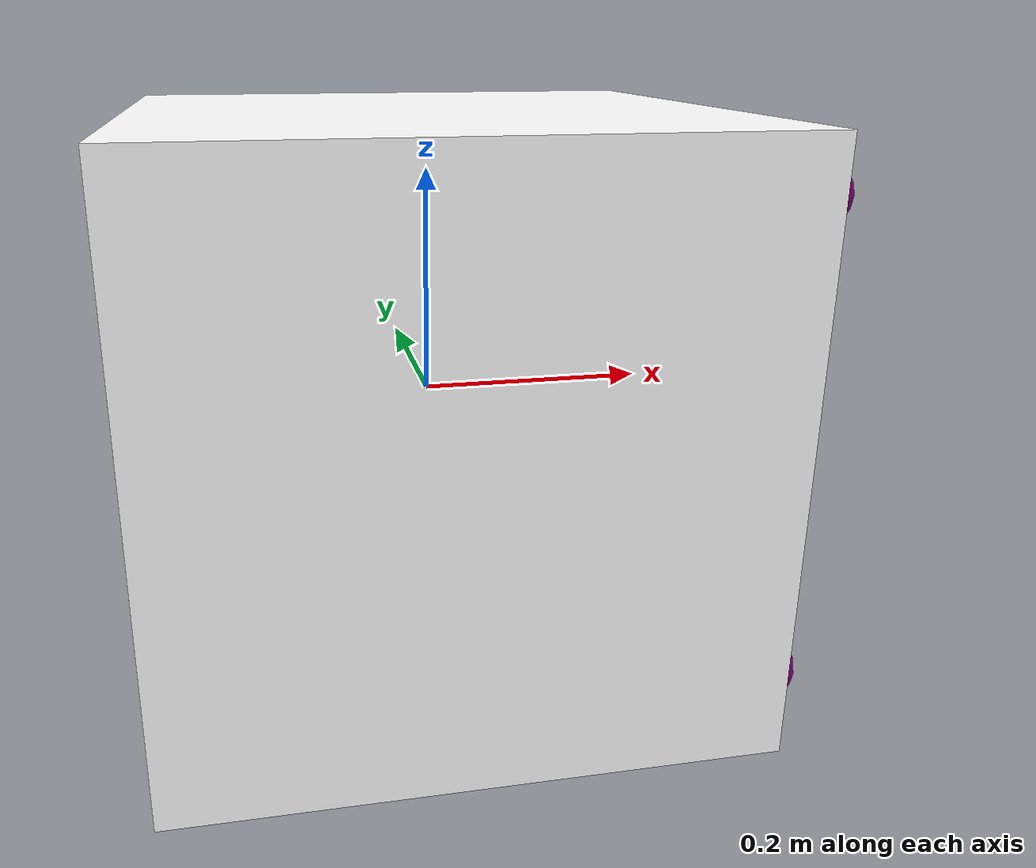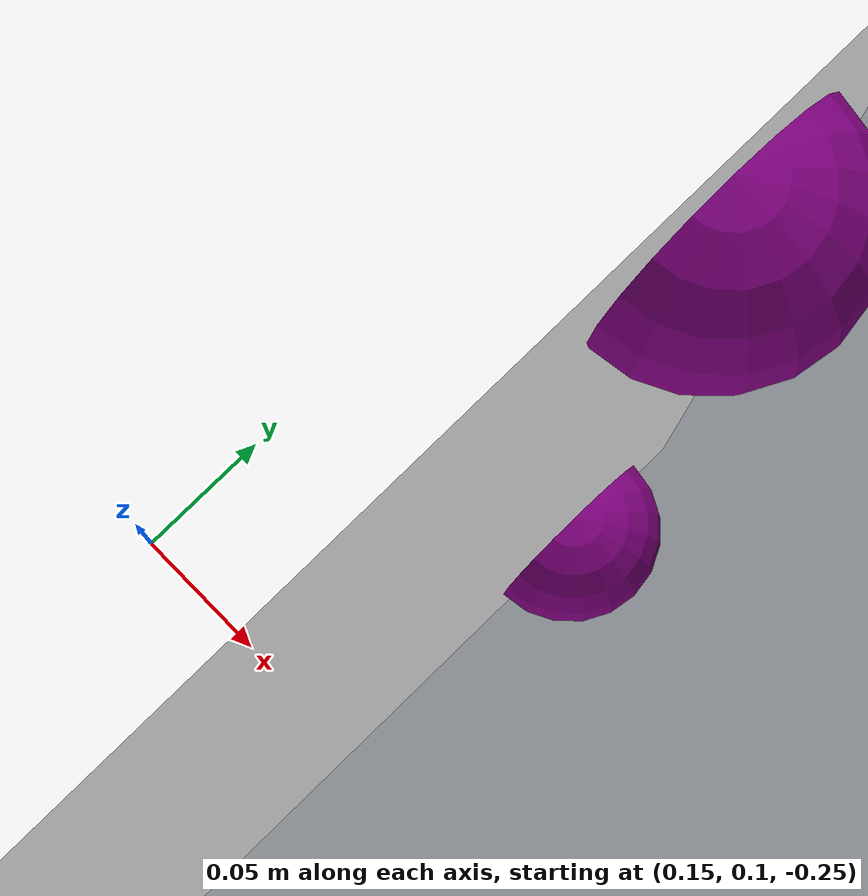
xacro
<?xml version="1.0"?>
<robot xmlns:xacro="http://www.ros.org/wiki/xacro" name="target">

  <!-- Materials -->
  <material name="white">
    <color rgba="1 1 1 1"/>
  </material>
  <material name="purple">
    <color rgba="0.5 0 0.5 1"/>
  </material>

  <!-- Properties -->
  <xacro:property name="box_size" value="0.5"/>
  <xacro:property name="marker_radius" value="0.03"/>
  <xacro:property name="marker_offset_x" value="0.25"/> <!-- Half of box size -->
  <xacro:property name="marker_offset_y" value="0.2"/>
  <xacro:property name="marker_offset_z" value="0.2"/>

  <!-- Base Link -->
  <link name="base_link">
    <inertial>
      <mass value="1.0"/>
      <origin xyz="0 0 0" rpy="0 0 0"/>
      <inertia ixx="${1.0/12.0 * 1.0 * (box_size*box_size + box_size*box_size)}"
               ixy="0" ixz="0"
               iyy="${1.0/12.0 * 1.0 * (box_size*box_size + box_size*box_size)}"
               iyz="0"
               izz="${1.0/12.0 * 1.0 * (box_size*box_size + box_size*box_size)}"/>
    </inertial>
    <visual>
      <geometry>
        <box size="${box_size} ${box_size} ${box_size}"/>
      </geometry>
      <material name="white"/>
    </visual>
    <collision>
      <geometry>
        <box size="${box_size} ${box_size} ${box_size}"/>
      </geometry>
    </collision>
  </link>

  <gazebo reference="base_link">
    <material>Gazebo/White</material>
    <mu1>0.0</mu1>
    <mu2>0.0</mu2>
  </gazebo>

  <!-- Marker Macro -->
  <xacro:macro name="marker" params="suffix y_mult z_mult">
    <link name="marker_${suffix}">
      <visual>
        <geometry>
          <sphere radius="${marker_radius}"/>
        </geometry>
        <material name="purple"/>
      </visual>
    </link>
    <joint name="joint_marker_${suffix}" type="fixed">
      <parent link="base_link"/>
      <child link="marker_${suffix}"/>
      <origin xyz="${marker_offset_x} ${marker_offset_y * y_mult} ${marker_offset_z * z_mult}" rpy="0 0 0"/>
    </joint>
    <gazebo reference="marker_${suffix}">
      <material>Gazebo/Purple</material>
    </gazebo>
  </xacro:macro>

  <!-- Instantiate Markers -->
  <xacro:marker suffix="tl" y_mult="1" z_mult="1"/>
  <xacro:marker suffix="tr" y_mult="-1" z_mult="1"/>
  <xacro:marker suffix="bl" y_mult="1" z_mult="-1"/>
  <xacro:marker suffix="br" y_mult="-1" z_mult="-1"/>

  <!-- Planar Move Plugin -->
  <gazebo>
    <plugin name="object_controller" filename="libgazebo_ros_planar_move.so">
      <commandTopic>cmd_vel</commandTopic>
      <odometryTopic>odom</odometryTopic>
      <odometryFrame>odom</odometryFrame>
      <odometryRate>20.0</odometryRate>
      <robotBaseFrame>base_link</robotBaseFrame>
    </plugin>
  </gazebo>

</robot>
